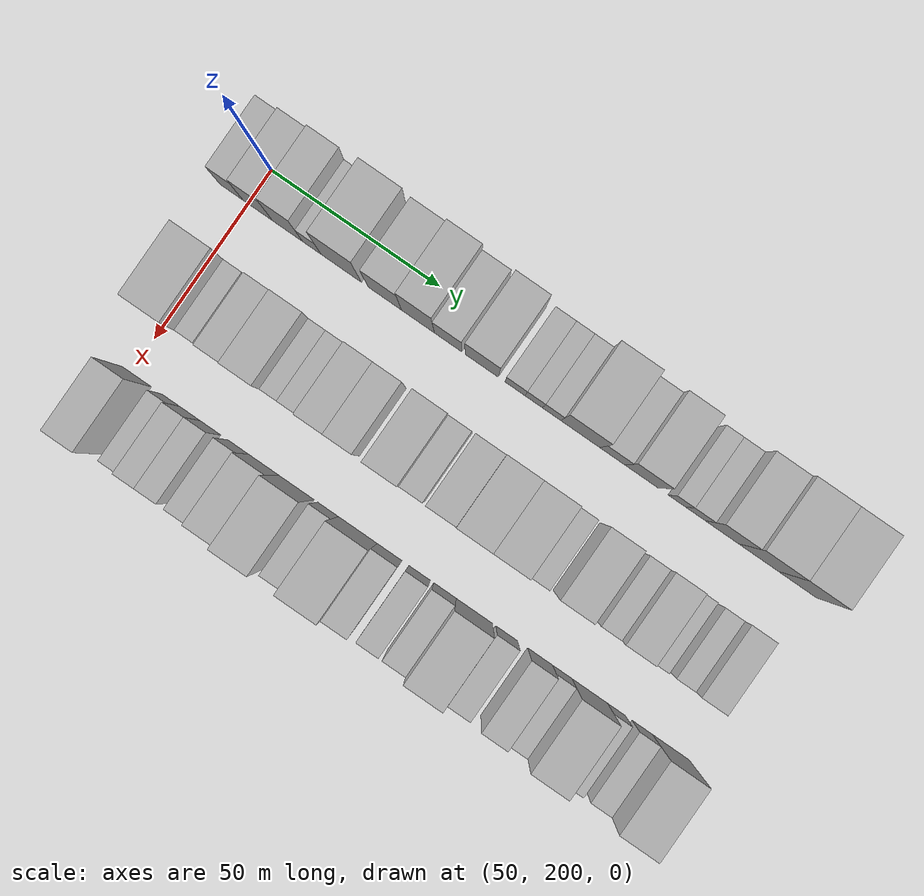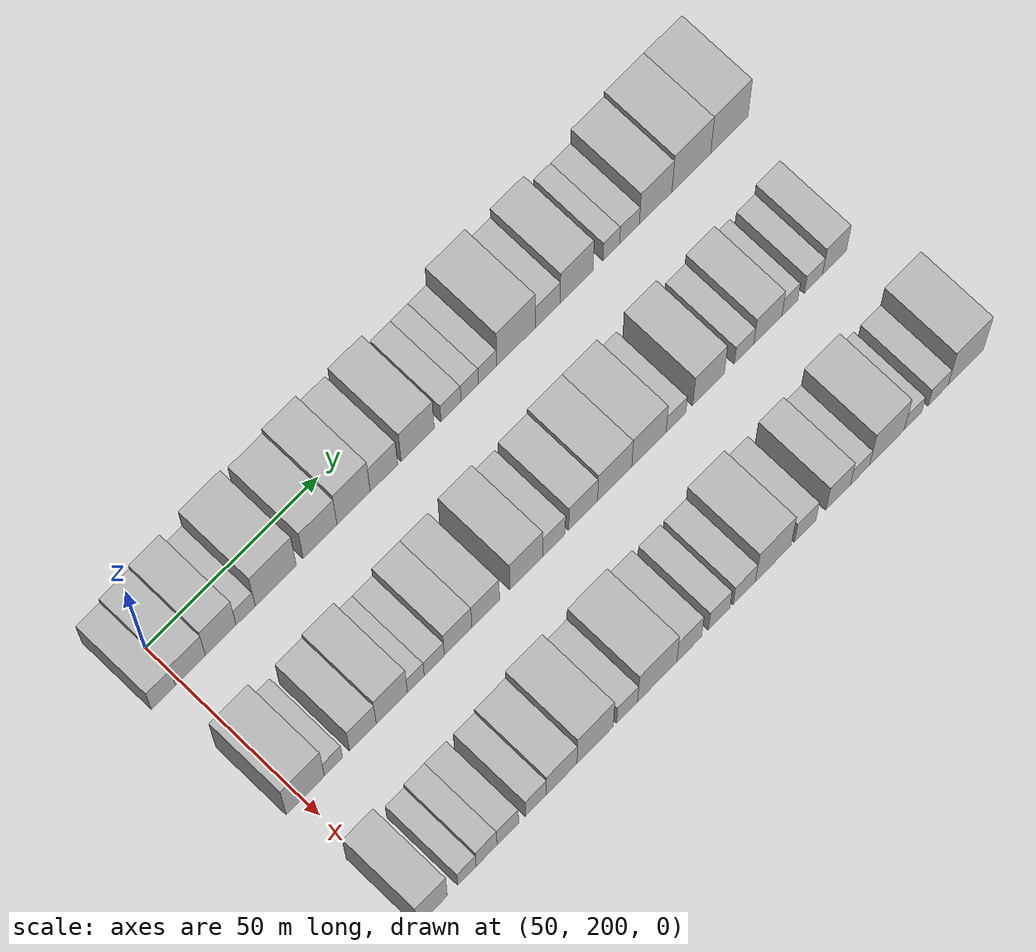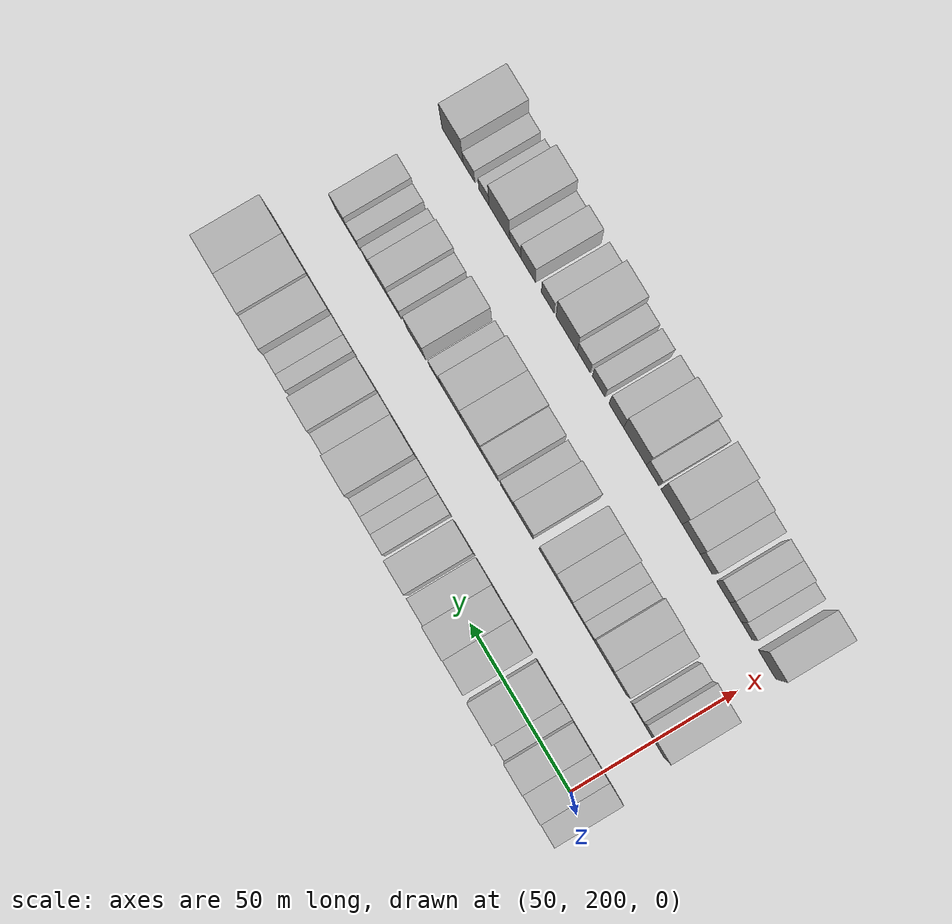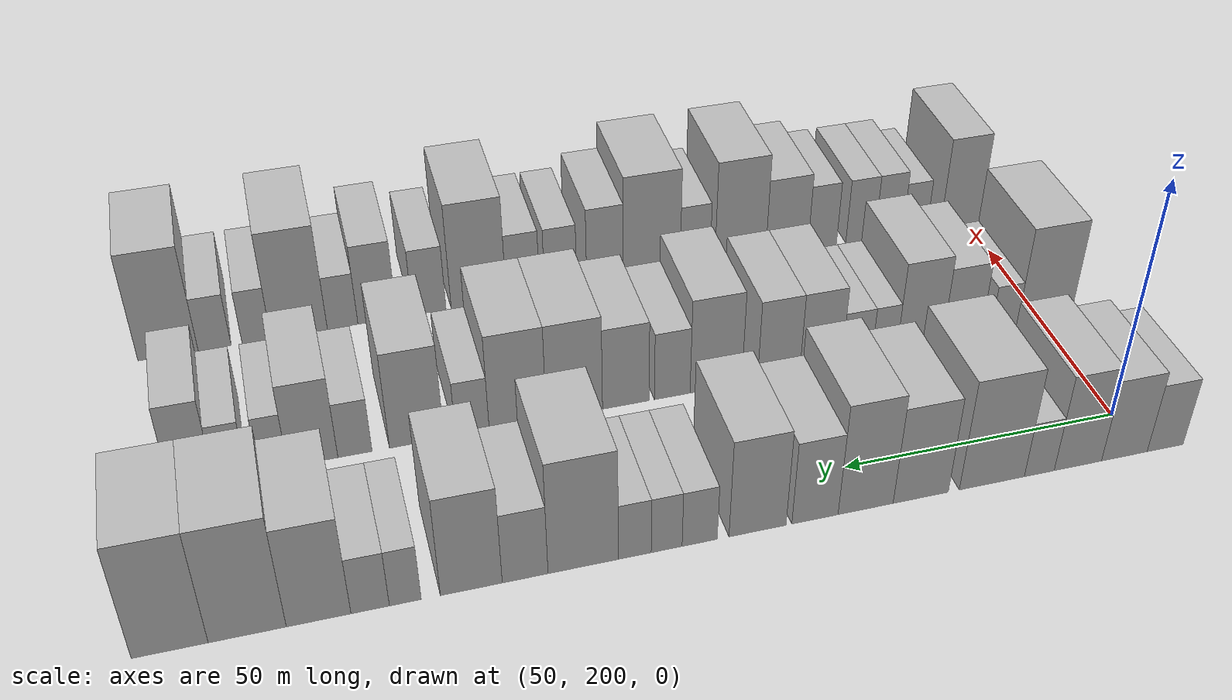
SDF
<sdf version="1.6">
 <world name="default">
  <model name="building_62">
   <static>1</static>
   <pose>50.0000 195.2270 0 0.000000 0.000000 0.000000</pose>
   <link name="link">
    <pose>0 0 7.50 0 0 0</pose>
    <collision name="collision"><geometry><box><size>20.0000 6.8969 15.0000</size></box></geometry></collision>
    <visual name="visual">
     <cast_shadows>0</cast_shadows>
     <geometry><box><size>20.0000 6.8969 15.0000</size></box></geometry>
     <material>
      <script>
       <uri>model://HANNAS_wall/materials/scripts</uri>
       <uri>model://HANNAS_wall/materials/textures</uri>
       <name>vrc/HANNAS_wall</name>
      </script>
     </material>
    </visual>
   </link>
  </model>
  <model name="building_63">
   <static>1</static>
   <pose>50.0000 203.0137 0 0.000000 0.000000 0.000000</pose>
   <link name="link">
    <pose>0 0 9.00 0 0 0</pose>
    <collision name="collision"><geometry><box><size>20.0000 8.6763 18.0000</size></box></geometry></collision>
    <visual name="visual">
     <cast_shadows>0</cast_shadows>
     <geometry><box><size>20.0000 8.6763 18.0000</size></box></geometry>
     <material>
      <script>
       <uri>model://HANNAS_wall/materials/scripts</uri>
       <uri>model://HANNAS_wall/materials/textures</uri>
       <name>vrc/HANNAS_wall</name>
      </script>
     </material>
    </visual>
   </link>
  </model>
  <model name="building_64">
   <static>1</static>
   <pose>50.0000 211.7805 0 0.000000 0.000000 0.000000</pose>
   <link name="link">
    <pose>0 0 10.50 0 0 0</pose>
    <collision name="collision"><geometry><box><size>20.0000 8.8573 21.0000</size></box></geometry></collision>
    <visual name="visual">
     <cast_shadows>0</cast_shadows>
     <geometry><box><size>20.0000 8.8573 21.0000</size></box></geometry>
     <material>
      <script>
       <uri>model://HANNAS_wall/materials/scripts</uri>
       <uri>model://HANNAS_wall/materials/textures</uri>
       <name>vrc/HANNAS_wall</name>
      </script>
     </material>
    </visual>
   </link>
  </model>
  <model name="building_65">
   <static>1</static>
   <pose>50.0000 218.9763 0 0.000000 0.000000 0.000000</pose>
   <link name="link">
    <pose>0 0 6.00 0 0 0</pose>
    <collision name="collision"><geometry><box><size>20.0000 5.5345 12.0000</size></box></geometry></collision>
    <visual name="visual">
     <cast_shadows>0</cast_shadows>
     <geometry><box><size>20.0000 5.5345 12.0000</size></box></geometry>
     <material>
      <script>
       <uri>model://HANNAS_wall/materials/scripts</uri>
       <uri>model://HANNAS_wall/materials/textures</uri>
       <name>vrc/HANNAS_wall</name>
      </script>
     </material>
    </visual>
   </link>
  </model>
  <model name="building_66">
   <static>1</static>
   <pose>50.0000 227.6906 0 0.000000 0.000000 0.000000</pose>
   <link name="link">
    <pose>0 0 12.00 0 0 0</pose>
    <collision name="collision"><geometry><box><size>20.0000 11.8941 24.0000</size></box></geometry></collision>
    <visual name="visual">
     <cast_shadows>0</cast_shadows>
     <geometry><box><size>20.0000 11.8941 24.0000</size></box></geometry>
     <material>
      <script>
       <uri>model://HANNAS_wall/materials/scripts</uri>
       <uri>model://HANNAS_wall/materials/textures</uri>
       <name>vrc/HANNAS_wall</name>
      </script>
     </material>
    </visual>
   </link>
  </model>
  <model name="building_67">
   <static>1</static>
   <pose>50.0000 240.5784 0 0.000000 0.000000 0.000000</pose>
   <link name="link">
    <pose>0 0 10.50 0 0 0</pose>
    <collision name="collision"><geometry><box><size>20.0000 9.8814 21.0000</size></box></geometry></collision>
    <visual name="visual">
     <cast_shadows>0</cast_shadows>
     <geometry><box><size>20.0000 9.8814 21.0000</size></box></geometry>
     <material>
      <script>
       <uri>model://HANNAS_wall/materials/scripts</uri>
       <uri>model://HANNAS_wall/materials/textures</uri>
       <name>vrc/HANNAS_wall</name>
      </script>
     </material>
    </visual>
   </link>
  </model>
  <model name="building_68">
   <static>1</static>
   <pose>50.0000 250.3855 0 0.000000 0.000000 0.000000</pose>
   <link name="link">
    <pose>0 0 12.00 0 0 0</pose>
    <collision name="collision"><geometry><box><size>20.0000 9.7328 24.0000</size></box></geometry></collision>
    <visual name="visual">
     <cast_shadows>0</cast_shadows>
     <geometry><box><size>20.0000 9.7328 24.0000</size></box></geometry>
     <material>
      <script>
       <uri>model://HANNAS_wall/materials/scripts</uri>
       <uri>model://HANNAS_wall/materials/textures</uri>
       <name>vrc/HANNAS_wall</name>
      </script>
     </material>
    </visual>
   </link>
  </model>
  <model name="building_69">
   <static>1</static>
   <pose>50.0000 259.2750 0 0.000000 0.000000 0.000000</pose>
   <link name="link">
    <pose>0 0 9.00 0 0 0</pose>
    <collision name="collision"><geometry><box><size>20.0000 8.0463 18.0000</size></box></geometry></collision>
    <visual name="visual">
     <cast_shadows>0</cast_shadows>
     <geometry><box><size>20.0000 8.0463 18.0000</size></box></geometry>
     <material>
      <script>
       <uri>model://HANNAS_wall/materials/scripts</uri>
       <uri>model://HANNAS_wall/materials/textures</uri>
       <name>vrc/HANNAS_wall</name>
      </script>
     </material>
    </visual>
   </link>
  </model>
  <model name="building_70">
   <static>1</static>
   <pose>50.0000 269.1923 0 0.000000 0.000000 0.000000</pose>
   <link name="link">
    <pose>0 0 10.50 0 0 0</pose>
    <collision name="collision"><geometry><box><size>20.0000 9.7882 21.0000</size></box></geometry></collision>
    <visual name="visual">
     <cast_shadows>0</cast_shadows>
     <geometry><box><size>20.0000 9.7882 21.0000</size></box></geometry>
     <material>
      <script>
       <uri>model://HANNAS_wall/materials/scripts</uri>
       <uri>model://HANNAS_wall/materials/textures</uri>
       <name>vrc/HANNAS_wall</name>
      </script>
     </material>
    </visual>
   </link>
  </model>
  <model name="building_71">
   <static>1</static>
   <pose>50.0000 279.0514 0 0.000000 0.000000 0.000000</pose>
   <link name="link">
    <pose>0 0 6.00 0 0 0</pose>
    <collision name="collision"><geometry><box><size>20.0000 5.9301 12.0000</size></box></geometry></collision>
    <visual name="visual">
     <cast_shadows>0</cast_shadows>
     <geometry><box><size>20.0000 5.9301 12.0000</size></box></geometry>
     <material>
      <script>
       <uri>model://HANNAS_wall/materials/scripts</uri>
       <uri>model://HANNAS_wall/materials/textures</uri>
       <name>vrc/HANNAS_wall</name>
      </script>
     </material>
    </visual>
   </link>
  </model>
  <model name="building_72">
   <static>1</static>
   <pose>50.0000 284.6004 0 0.000000 0.000000 0.000000</pose>
   <link name="link">
    <pose>0 0 6.00 0 0 0</pose>
    <collision name="collision"><geometry><box><size>20.0000 5.1681 12.0000</size></box></geometry></collision>
    <visual name="visual">
     <cast_shadows>0</cast_shadows>
     <geometry><box><size>20.0000 5.1681 12.0000</size></box></geometry>
     <material>
      <script>
       <uri>model://HANNAS_wall/materials/scripts</uri>
       <uri>model://HANNAS_wall/materials/textures</uri>
       <name>vrc/HANNAS_wall</name>
      </script>
     </material>
    </visual>
   </link>
  </model>
  <model name="building_73">
   <static>1</static>
   <pose>50.0000 289.9048 0 0.000000 0.000000 0.000000</pose>
   <link name="link">
    <pose>0 0 6.00 0 0 0</pose>
    <collision name="collision"><geometry><box><size>20.0000 5.4407 12.0000</size></box></geometry></collision>
    <visual name="visual">
     <cast_shadows>0</cast_shadows>
     <geometry><box><size>20.0000 5.4407 12.0000</size></box></geometry>
     <material>
      <script>
       <uri>model://HANNAS_wall/materials/scripts</uri>
       <uri>model://HANNAS_wall/materials/textures</uri>
       <name>vrc/HANNAS_wall</name>
      </script>
     </material>
    </visual>
   </link>
  </model>
  <model name="building_74">
   <static>1</static>
   <pose>50.0000 298.3838 0 0.000000 0.000000 0.000000</pose>
   <link name="link">
    <pose>0 0 12.00 0 0 0</pose>
    <collision name="collision"><geometry><box><size>20.0000 11.5172 24.0000</size></box></geometry></collision>
    <visual name="visual">
     <cast_shadows>0</cast_shadows>
     <geometry><box><size>20.0000 11.5172 24.0000</size></box></geometry>
     <material>
      <script>
       <uri>model://HANNAS_wall/materials/scripts</uri>
       <uri>model://HANNAS_wall/materials/textures</uri>
       <name>vrc/HANNAS_wall</name>
      </script>
     </material>
    </visual>
   </link>
  </model>
  <model name="building_75">
   <static>1</static>
   <pose>50.0000 307.8314 0 0.000000 0.000000 0.000000</pose>
   <link name="link">
    <pose>0 0 7.50 0 0 0</pose>
    <collision name="collision"><geometry><box><size>20.0000 7.3780 15.0000</size></box></geometry></collision>
    <visual name="visual">
     <cast_shadows>0</cast_shadows>
     <geometry><box><size>20.0000 7.3780 15.0000</size></box></geometry>
     <material>
      <script>
       <uri>model://HANNAS_wall/materials/scripts</uri>
       <uri>model://HANNAS_wall/materials/textures</uri>
       <name>vrc/HANNAS_wall</name>
      </script>
     </material>
    </visual>
   </link>
  </model>
  <model name="building_76">
   <static>1</static>
   <pose>50.0000 316.4423 0 0.000000 0.000000 0.000000</pose>
   <link name="link">
    <pose>0 0 10.50 0 0 0</pose>
    <collision name="collision"><geometry><box><size>20.0000 9.8438 21.0000</size></box></geometry></collision>
    <visual name="visual">
     <cast_shadows>0</cast_shadows>
     <geometry><box><size>20.0000 9.8438 21.0000</size></box></geometry>
     <material>
      <script>
       <uri>model://HANNAS_wall/materials/scripts</uri>
       <uri>model://HANNAS_wall/materials/textures</uri>
       <name>vrc/HANNAS_wall</name>
      </script>
     </material>
    </visual>
   </link>
  </model>
  <model name="building_77">
   <static>1</static>
   <pose>50.0000 326.8547 0 0.000000 0.000000 0.000000</pose>
   <link name="link">
    <pose>0 0 6.00 0 0 0</pose>
    <collision name="collision"><geometry><box><size>20.0000 4.9808 12.0000</size></box></geometry></collision>
    <visual name="visual">
     <cast_shadows>0</cast_shadows>
     <geometry><box><size>20.0000 4.9808 12.0000</size></box></geometry>
     <material>
      <script>
       <uri>model://HANNAS_wall/materials/scripts</uri>
       <uri>model://HANNAS_wall/materials/textures</uri>
       <name>vrc/HANNAS_wall</name>
      </script>
     </material>
    </visual>
   </link>
  </model>
  <model name="building_78">
   <static>1</static>
   <pose>50.0000 332.3177 0 0.000000 0.000000 0.000000</pose>
   <link name="link">
    <pose>0 0 6.00 0 0 0</pose>
    <collision name="collision"><geometry><box><size>20.0000 5.9453 12.0000</size></box></geometry></collision>
    <visual name="visual">
     <cast_shadows>0</cast_shadows>
     <geometry><box><size>20.0000 5.9453 12.0000</size></box></geometry>
     <material>
      <script>
       <uri>model://HANNAS_wall/materials/scripts</uri>
       <uri>model://HANNAS_wall/materials/textures</uri>
       <name>vrc/HANNAS_wall</name>
      </script>
     </material>
    </visual>
   </link>
  </model>
  <model name="building_79">
   <static>1</static>
   <pose>50.0000 340.2331 0 0.000000 0.000000 0.000000</pose>
   <link name="link">
    <pose>0 0 10.50 0 0 0</pose>
    <collision name="collision"><geometry><box><size>20.0000 9.8855 21.0000</size></box></geometry></collision>
    <visual name="visual">
     <cast_shadows>0</cast_shadows>
     <geometry><box><size>20.0000 9.8855 21.0000</size></box></geometry>
     <material>
      <script>
       <uri>model://HANNAS_wall/materials/scripts</uri>
       <uri>model://HANNAS_wall/materials/textures</uri>
       <name>vrc/HANNAS_wall</name>
      </script>
     </material>
    </visual>
   </link>
  </model>
  <model name="building_80">
   <static>1</static>
   <pose>50.0000 351.0403 0 0.000000 0.000000 0.000000</pose>
   <link name="link">
    <pose>0 0 12.00 0 0 0</pose>
    <collision name="collision"><geometry><box><size>20.0000 11.7289 24.0000</size></box></geometry></collision>
    <visual name="visual">
     <cast_shadows>0</cast_shadows>
     <geometry><box><size>20.0000 11.7289 24.0000</size></box></geometry>
     <material>
      <script>
       <uri>model://HANNAS_wall/materials/scripts</uri>
       <uri>model://HANNAS_wall/materials/textures</uri>
       <name>vrc/HANNAS_wall</name>
      </script>
     </material>
    </visual>
   </link>
  </model>
  <model name="building_81">
   <static>1</static>
   <pose>50.0000 362.5758 0 0.000000 0.000000 0.000000</pose>
   <link name="link">
    <pose>0 0 12.00 0 0 0</pose>
    <collision name="collision"><geometry><box><size>20.0000 11.3421 24.0000</size></box></geometry></collision>
    <visual name="visual">
     <cast_shadows>0</cast_shadows>
     <geometry><box><size>20.0000 11.3421 24.0000</size></box></geometry>
     <material>
      <script>
       <uri>model://HANNAS_wall/materials/scripts</uri>
       <uri>model://HANNAS_wall/materials/textures</uri>
       <name>vrc/HANNAS_wall</name>
      </script>
     </material>
    </visual>
   </link>
  </model>
  <model name="building_142">
   <static>1</static>
   <pose>85.0000 200.9007 0 0.000000 0.000000 0.000000</pose>
   <link name="link">
    <pose>0 0 12.00 0 0 0</pose>
    <collision name="collision"><geometry><box><size>20.0000 11.0409 24.0000</size></box></geometry></collision>
    <visual name="visual">
     <cast_shadows>0</cast_shadows>
     <geometry><box><size>20.0000 11.0409 24.0000</size></box></geometry>
     <material>
      <script>
       <uri>model://HANNAS_wall/materials/scripts</uri>
       <uri>model://HANNAS_wall/materials/textures</uri>
       <name>vrc/HANNAS_wall</name>
      </script>
     </material>
    </visual>
   </link>
  </model>
  <model name="building_143">
   <static>1</static>
   <pose>85.0000 209.0404 0 0.000000 0.000000 0.000000</pose>
   <link name="link">
    <pose>0 0 6.00 0 0 0</pose>
    <collision name="collision"><geometry><box><size>20.0000 5.2383 12.0000</size></box></geometry></collision>
    <visual name="visual">
     <cast_shadows>0</cast_shadows>
     <geometry><box><size>20.0000 5.2383 12.0000</size></box></geometry>
     <material>
      <script>
       <uri>model://HANNAS_wall/materials/scripts</uri>
       <uri>model://HANNAS_wall/materials/textures</uri>
       <name>vrc/HANNAS_wall</name>
      </script>
     </material>
    </visual>
   </link>
  </model>
  <model name="building_144">
   <static>1</static>
   <pose>85.0000 217.5261 0 0.000000 0.000000 0.000000</pose>
   <link name="link">
    <pose>0 0 9.00 0 0 0</pose>
    <collision name="collision"><geometry><box><size>20.0000 7.7331 18.0000</size></box></geometry></collision>
    <visual name="visual">
     <cast_shadows>0</cast_shadows>
     <geometry><box><size>20.0000 7.7331 18.0000</size></box></geometry>
     <material>
      <script>
       <uri>model://HANNAS_wall/materials/scripts</uri>
       <uri>model://HANNAS_wall/materials/textures</uri>
       <name>vrc/HANNAS_wall</name>
      </script>
     </material>
    </visual>
   </link>
  </model>
  <model name="building_145">
   <static>1</static>
   <pose>85.0000 225.9189 0 0.000000 0.000000 0.000000</pose>
   <link name="link">
    <pose>0 0 10.50 0 0 0</pose>
    <collision name="collision"><geometry><box><size>20.0000 9.0525 21.0000</size></box></geometry></collision>
    <visual name="visual">
     <cast_shadows>0</cast_shadows>
     <geometry><box><size>20.0000 9.0525 21.0000</size></box></geometry>
     <material>
      <script>
       <uri>model://HANNAS_wall/materials/scripts</uri>
       <uri>model://HANNAS_wall/materials/textures</uri>
       <name>vrc/HANNAS_wall</name>
      </script>
     </material>
    </visual>
   </link>
  </model>
  <model name="building_146">
   <static>1</static>
   <pose>85.0000 232.8794 0 0.000000 0.000000 0.000000</pose>
   <link name="link">
    <pose>0 0 6.00 0 0 0</pose>
    <collision name="collision"><geometry><box><size>20.0000 4.8685 12.0000</size></box></geometry></collision>
    <visual name="visual">
     <cast_shadows>0</cast_shadows>
     <geometry><box><size>20.0000 4.8685 12.0000</size></box></geometry>
     <material>
      <script>
       <uri>model://HANNAS_wall/materials/scripts</uri>
       <uri>model://HANNAS_wall/materials/textures</uri>
       <name>vrc/HANNAS_wall</name>
      </script>
     </material>
    </visual>
   </link>
  </model>
  <model name="building_147">
   <static>1</static>
   <pose>85.0000 238.2416 0 0.000000 0.000000 0.000000</pose>
   <link name="link">
    <pose>0 0 6.00 0 0 0</pose>
    <collision name="collision"><geometry><box><size>20.0000 5.8560 12.0000</size></box></geometry></collision>
    <visual name="visual">
     <cast_shadows>0</cast_shadows>
     <geometry><box><size>20.0000 5.8560 12.0000</size></box></geometry>
     <material>
      <script>
       <uri>model://HANNAS_wall/materials/scripts</uri>
       <uri>model://HANNAS_wall/materials/textures</uri>
       <name>vrc/HANNAS_wall</name>
      </script>
     </material>
    </visual>
   </link>
  </model>
  <model name="building_148">
   <static>1</static>
   <pose>85.0000 245.2063 0 0.000000 0.000000 0.000000</pose>
   <link name="link">
    <pose>0 0 9.00 0 0 0</pose>
    <collision name="collision"><geometry><box><size>20.0000 8.0736 18.0000</size></box></geometry></collision>
    <visual name="visual">
     <cast_shadows>0</cast_shadows>
     <geometry><box><size>20.0000 8.0736 18.0000</size></box></geometry>
     <material>
      <script>
       <uri>model://HANNAS_wall/materials/scripts</uri>
       <uri>model://HANNAS_wall/materials/textures</uri>
       <name>vrc/HANNAS_wall</name>
      </script>
     </material>
    </visual>
   </link>
  </model>
  <model name="building_149">
   <static>1</static>
   <pose>85.0000 253.2867 0 0.000000 0.000000 0.000000</pose>
   <link name="link">
    <pose>0 0 9.00 0 0 0</pose>
    <collision name="collision"><geometry><box><size>20.0000 8.0872 18.0000</size></box></geometry></collision>
    <visual name="visual">
     <cast_shadows>0</cast_shadows>
     <geometry><box><size>20.0000 8.0872 18.0000</size></box></geometry>
     <material>
      <script>
       <uri>model://HANNAS_wall/materials/scripts</uri>
       <uri>model://HANNAS_wall/materials/textures</uri>
       <name>vrc/HANNAS_wall</name>
      </script>
     </material>
    </visual>
   </link>
  </model>
  <model name="building_150">
   <static>1</static>
   <pose>85.0000 265.1946 0 0.000000 0.000000 0.000000</pose>
   <link name="link">
    <pose>0 0 10.50 0 0 0</pose>
    <collision name="collision"><geometry><box><size>20.0000 9.7285 21.0000</size></box></geometry></collision>
    <visual name="visual">
     <cast_shadows>0</cast_shadows>
     <geometry><box><size>20.0000 9.7285 21.0000</size></box></geometry>
     <material>
      <script>
       <uri>model://HANNAS_wall/materials/scripts</uri>
       <uri>model://HANNAS_wall/materials/textures</uri>
       <name>vrc/HANNAS_wall</name>
      </script>
     </material>
    </visual>
   </link>
  </model>
  <model name="building_151">
   <static>1</static>
   <pose>85.0000 273.3765 0 0.000000 0.000000 0.000000</pose>
   <link name="link">
    <pose>0 0 7.50 0 0 0</pose>
    <collision name="collision"><geometry><box><size>20.0000 6.6353 15.0000</size></box></geometry></collision>
    <visual name="visual">
     <cast_shadows>0</cast_shadows>
     <geometry><box><size>20.0000 6.6353 15.0000</size></box></geometry>
     <material>
      <script>
       <uri>model://HANNAS_wall/materials/scripts</uri>
       <uri>model://HANNAS_wall/materials/textures</uri>
       <name>vrc/HANNAS_wall</name>
      </script>
     </material>
    </visual>
   </link>
  </model>
  <model name="building_152">
   <static>1</static>
   <pose>85.0000 281.9622 0 0.000000 0.000000 0.000000</pose>
   <link name="link">
    <pose>0 0 9.00 0 0 0</pose>
    <collision name="collision"><geometry><box><size>20.0000 8.5362 18.0000</size></box></geometry></collision>
    <visual name="visual">
     <cast_shadows>0</cast_shadows>
     <geometry><box><size>20.0000 8.5362 18.0000</size></box></geometry>
     <material>
      <script>
       <uri>model://HANNAS_wall/materials/scripts</uri>
       <uri>model://HANNAS_wall/materials/textures</uri>
       <name>vrc/HANNAS_wall</name>
      </script>
     </material>
    </visual>
   </link>
  </model>
  <model name="building_153">
   <static>1</static>
   <pose>85.0000 291.3192 0 0.000000 0.000000 0.000000</pose>
   <link name="link">
    <pose>0 0 10.50 0 0 0</pose>
    <collision name="collision"><geometry><box><size>20.0000 10.1778 21.0000</size></box></geometry></collision>
    <visual name="visual">
     <cast_shadows>0</cast_shadows>
     <geometry><box><size>20.0000 10.1778 21.0000</size></box></geometry>
     <material>
      <script>
       <uri>model://HANNAS_wall/materials/scripts</uri>
       <uri>model://HANNAS_wall/materials/textures</uri>
       <name>vrc/HANNAS_wall</name>
      </script>
     </material>
    </visual>
   </link>
  </model>
  <model name="building_154">
   <static>1</static>
   <pose>85.0000 301.5175 0 0.000000 0.000000 0.000000</pose>
   <link name="link">
    <pose>0 0 10.50 0 0 0</pose>
    <collision name="collision"><geometry><box><size>20.0000 10.2187 21.0000</size></box></geometry></collision>
    <visual name="visual">
     <cast_shadows>0</cast_shadows>
     <geometry><box><size>20.0000 10.2187 21.0000</size></box></geometry>
     <material>
      <script>
       <uri>model://HANNAS_wall/materials/scripts</uri>
       <uri>model://HANNAS_wall/materials/textures</uri>
       <name>vrc/HANNAS_wall</name>
      </script>
     </material>
    </visual>
   </link>
  </model>
  <model name="building_155">
   <static>1</static>
   <pose>85.0000 309.6089 0 0.000000 0.000000 0.000000</pose>
   <link name="link">
    <pose>0 0 6.00 0 0 0</pose>
    <collision name="collision"><geometry><box><size>20.0000 5.9642 12.0000</size></box></geometry></collision>
    <visual name="visual">
     <cast_shadows>0</cast_shadows>
     <geometry><box><size>20.0000 5.9642 12.0000</size></box></geometry>
     <material>
      <script>
       <uri>model://HANNAS_wall/materials/scripts</uri>
       <uri>model://HANNAS_wall/materials/textures</uri>
       <name>vrc/HANNAS_wall</name>
      </script>
     </material>
    </visual>
   </link>
  </model>
  <model name="building_156">
   <static>1</static>
   <pose>85.0000 319.3397 0 0.000000 0.000000 0.000000</pose>
   <link name="link">
    <pose>0 0 10.50 0 0 0</pose>
    <collision name="collision"><geometry><box><size>20.0000 9.4974 21.0000</size></box></geometry></collision>
    <visual name="visual">
     <cast_shadows>0</cast_shadows>
     <geometry><box><size>20.0000 9.4974 21.0000</size></box></geometry>
     <material>
      <script>
       <uri>model://HANNAS_wall/materials/scripts</uri>
       <uri>model://HANNAS_wall/materials/textures</uri>
       <name>vrc/HANNAS_wall</name>
      </script>
     </material>
    </visual>
   </link>
  </model>
  <model name="building_157">
   <static>1</static>
   <pose>85.0000 330.0149 0 0.000000 0.000000 0.000000</pose>
   <link name="link">
    <pose>0 0 6.00 0 0 0</pose>
    <collision name="collision"><geometry><box><size>20.0000 5.8530 12.0000</size></box></geometry></collision>
    <visual name="visual">
     <cast_shadows>0</cast_shadows>
     <geometry><box><size>20.0000 5.8530 12.0000</size></box></geometry>
     <material>
      <script>
       <uri>model://HANNAS_wall/materials/scripts</uri>
       <uri>model://HANNAS_wall/materials/textures</uri>
       <name>vrc/HANNAS_wall</name>
      </script>
     </material>
    </visual>
   </link>
  </model>
  <model name="building_158">
   <static>1</static>
   <pose>85.0000 337.2015 0 0.000000 0.000000 0.000000</pose>
   <link name="link">
    <pose>0 0 9.00 0 0 0</pose>
    <collision name="collision"><geometry><box><size>20.0000 8.5202 18.0000</size></box></geometry></collision>
    <visual name="visual">
     <cast_shadows>0</cast_shadows>
     <geometry><box><size>20.0000 8.5202 18.0000</size></box></geometry>
     <material>
      <script>
       <uri>model://HANNAS_wall/materials/scripts</uri>
       <uri>model://HANNAS_wall/materials/textures</uri>
       <name>vrc/HANNAS_wall</name>
      </script>
     </material>
    </visual>
   </link>
  </model>
  <model name="building_159">
   <static>1</static>
   <pose>85.0000 343.8737 0 0.000000 0.000000 0.000000</pose>
   <link name="link">
    <pose>0 0 6.00 0 0 0</pose>
    <collision name="collision"><geometry><box><size>20.0000 4.8241 12.0000</size></box></geometry></collision>
    <visual name="visual">
     <cast_shadows>0</cast_shadows>
     <geometry><box><size>20.0000 4.8241 12.0000</size></box></geometry>
     <material>
      <script>
       <uri>model://HANNAS_wall/materials/scripts</uri>
       <uri>model://HANNAS_wall/materials/textures</uri>
       <name>vrc/HANNAS_wall</name>
      </script>
     </material>
    </visual>
   </link>
  </model>
  <model name="building_160">
   <static>1</static>
   <pose>85.0000 351.0418 0 0.000000 0.000000 0.000000</pose>
   <link name="link">
    <pose>0 0 6.00 0 0 0</pose>
    <collision name="collision"><geometry><box><size>20.0000 5.5122 12.0000</size></box></geometry></collision>
    <visual name="visual">
     <cast_shadows>0</cast_shadows>
     <geometry><box><size>20.0000 5.5122 12.0000</size></box></geometry>
     <material>
      <script>
       <uri>model://HANNAS_wall/materials/scripts</uri>
       <uri>model://HANNAS_wall/materials/textures</uri>
       <name>vrc/HANNAS_wall</name>
      </script>
     </material>
    </visual>
   </link>
  </model>
  <model name="building_161">
   <static>1</static>
   <pose>85.0000 357.4154 0 0.000000 0.000000 0.000000</pose>
   <link name="link">
    <pose>0 0 9.00 0 0 0</pose>
    <collision name="collision"><geometry><box><size>20.0000 7.2349 18.0000</size></box></geometry></collision>
    <visual name="visual">
     <cast_shadows>0</cast_shadows>
     <geometry><box><size>20.0000 7.2349 18.0000</size></box></geometry>
     <material>
      <script>
       <uri>model://HANNAS_wall/materials/scripts</uri>
       <uri>model://HANNAS_wall/materials/textures</uri>
       <name>vrc/HANNAS_wall</name>
      </script>
     </material>
    </visual>
   </link>
  </model>
  <model name="building_221">
   <static>1</static>
   <pose>120.0000 201.7988 0 0.000000 0.000000 0.000000</pose>
   <link name="link">
    <pose>0 0 10.50 0 0 0</pose>
    <collision name="collision"><geometry><box><size>20.0000 8.7034 21.0000</size></box></geometry></collision>
    <visual name="visual">
     <cast_shadows>0</cast_shadows>
     <geometry><box><size>20.0000 8.7034 21.0000</size></box></geometry>
     <material>
      <script>
       <uri>model://HANNAS_wall/materials/scripts</uri>
       <uri>model://HANNAS_wall/materials/textures</uri>
       <name>vrc/HANNAS_wall</name>
      </script>
     </material>
    </visual>
   </link>
  </model>
  <model name="building_222">
   <static>1</static>
   <pose>120.0000 211.8116 0 0.000000 0.000000 0.000000</pose>
   <link name="link">
    <pose>0 0 6.00 0 0 0</pose>
    <collision name="collision"><geometry><box><size>20.0000 5.3221 12.0000</size></box></geometry></collision>
    <visual name="visual">
     <cast_shadows>0</cast_shadows>
     <geometry><box><size>20.0000 5.3221 12.0000</size></box></geometry>
     <material>
      <script>
       <uri>model://HANNAS_wall/materials/scripts</uri>
       <uri>model://HANNAS_wall/materials/textures</uri>
       <name>vrc/HANNAS_wall</name>
      </script>
     </material>
    </visual>
   </link>
  </model>
  <model name="building_223">
   <static>1</static>
   <pose>120.0000 217.4837 0 0.000000 0.000000 0.000000</pose>
   <link name="link">
    <pose>0 0 7.50 0 0 0</pose>
    <collision name="collision"><geometry><box><size>20.0000 6.0221 15.0000</size></box></geometry></collision>
    <visual name="visual">
     <cast_shadows>0</cast_shadows>
     <geometry><box><size>20.0000 6.0221 15.0000</size></box></geometry>
     <material>
      <script>
       <uri>model://HANNAS_wall/materials/scripts</uri>
       <uri>model://HANNAS_wall/materials/textures</uri>
       <name>vrc/HANNAS_wall</name>
      </script>
     </material>
    </visual>
   </link>
  </model>
  <model name="building_224">
   <static>1</static>
   <pose>120.0000 223.6107 0 0.000000 0.000000 0.000000</pose>
   <link name="link">
    <pose>0 0 7.50 0 0 0</pose>
    <collision name="collision"><geometry><box><size>20.0000 6.2319 15.0000</size></box></geometry></collision>
    <visual name="visual">
     <cast_shadows>0</cast_shadows>
     <geometry><box><size>20.0000 6.2319 15.0000</size></box></geometry>
     <material>
      <script>
       <uri>model://HANNAS_wall/materials/scripts</uri>
       <uri>model://HANNAS_wall/materials/textures</uri>
       <name>vrc/HANNAS_wall</name>
      </script>
     </material>
    </visual>
   </link>
  </model>
  <model name="building_225">
   <static>1</static>
   <pose>120.0000 231.7772 0 0.000000 0.000000 0.000000</pose>
   <link name="link">
    <pose>0 0 7.50 0 0 0</pose>
    <collision name="collision"><geometry><box><size>20.0000 6.1011 15.0000</size></box></geometry></collision>
    <visual name="visual">
     <cast_shadows>0</cast_shadows>
     <geometry><box><size>20.0000 6.1011 15.0000</size></box></geometry>
     <material>
      <script>
       <uri>model://HANNAS_wall/materials/scripts</uri>
       <uri>model://HANNAS_wall/materials/textures</uri>
       <name>vrc/HANNAS_wall</name>
      </script>
     </material>
    </visual>
   </link>
  </model>
  <model name="building_226">
   <static>1</static>
   <pose>120.0000 239.2904 0 0.000000 0.000000 0.000000</pose>
   <link name="link">
    <pose>0 0 9.00 0 0 0</pose>
    <collision name="collision"><geometry><box><size>20.0000 8.9252 18.0000</size></box></geometry></collision>
    <visual name="visual">
     <cast_shadows>0</cast_shadows>
     <geometry><box><size>20.0000 8.9252 18.0000</size></box></geometry>
     <material>
      <script>
       <uri>model://HANNAS_wall/materials/scripts</uri>
       <uri>model://HANNAS_wall/materials/textures</uri>
       <name>vrc/HANNAS_wall</name>
      </script>
     </material>
    </visual>
   </link>
  </model>
  <model name="building_227">
   <static>1</static>
   <pose>120.0000 249.0477 0 0.000000 0.000000 0.000000</pose>
   <link name="link">
    <pose>0 0 12.00 0 0 0</pose>
    <collision name="collision"><geometry><box><size>20.0000 10.5895 24.0000</size></box></geometry></collision>
    <visual name="visual">
     <cast_shadows>0</cast_shadows>
     <geometry><box><size>20.0000 10.5895 24.0000</size></box></geometry>
     <material>
      <script>
       <uri>model://HANNAS_wall/materials/scripts</uri>
       <uri>model://HANNAS_wall/materials/textures</uri>
       <name>vrc/HANNAS_wall</name>
      </script>
     </material>
    </visual>
   </link>
  </model>
  <model name="building_228">
   <static>1</static>
   <pose>120.0000 258.4227 0 0.000000 0.000000 0.000000</pose>
   <link name="link">
    <pose>0 0 7.50 0 0 0</pose>
    <collision name="collision"><geometry><box><size>20.0000 6.1605 15.0000</size></box></geometry></collision>
    <visual name="visual">
     <cast_shadows>0</cast_shadows>
     <geometry><box><size>20.0000 6.1605 15.0000</size></box></geometry>
     <material>
      <script>
       <uri>model://HANNAS_wall/materials/scripts</uri>
       <uri>model://HANNAS_wall/materials/textures</uri>
       <name>vrc/HANNAS_wall</name>
      </script>
     </material>
    </visual>
   </link>
  </model>
  <model name="building_229">
   <static>1</static>
   <pose>120.0000 267.2680 0 0.000000 0.000000 0.000000</pose>
   <link name="link">
    <pose>0 0 12.00 0 0 0</pose>
    <collision name="collision"><geometry><box><size>20.0000 11.5302 24.0000</size></box></geometry></collision>
    <visual name="visual">
     <cast_shadows>0</cast_shadows>
     <geometry><box><size>20.0000 11.5302 24.0000</size></box></geometry>
     <material>
      <script>
       <uri>model://HANNAS_wall/materials/scripts</uri>
       <uri>model://HANNAS_wall/materials/textures</uri>
       <name>vrc/HANNAS_wall</name>
      </script>
     </material>
    </visual>
   </link>
  </model>
  <model name="building_230">
   <static>1</static>
   <pose>120.0000 276.7028 0 0.000000 0.000000 0.000000</pose>
   <link name="link">
    <pose>0 0 9.00 0 0 0</pose>
    <collision name="collision"><geometry><box><size>20.0000 7.3393 18.0000</size></box></geometry></collision>
    <visual name="visual">
     <cast_shadows>0</cast_shadows>
     <geometry><box><size>20.0000 7.3393 18.0000</size></box></geometry>
     <material>
      <script>
       <uri>model://HANNAS_wall/materials/scripts</uri>
       <uri>model://HANNAS_wall/materials/textures</uri>
       <name>vrc/HANNAS_wall</name>
      </script>
     </material>
    </visual>
   </link>
  </model>
  <model name="building_231">
   <static>1</static>
   <pose>120.0000 285.5571 0 0.000000 0.000000 0.000000</pose>
   <link name="link">
    <pose>0 0 7.50 0 0 0</pose>
    <collision name="collision"><geometry><box><size>20.0000 6.3693 15.0000</size></box></geometry></collision>
    <visual name="visual">
     <cast_shadows>0</cast_shadows>
     <geometry><box><size>20.0000 6.3693 15.0000</size></box></geometry>
     <material>
      <script>
       <uri>model://HANNAS_wall/materials/scripts</uri>
       <uri>model://HANNAS_wall/materials/textures</uri>
       <name>vrc/HANNAS_wall</name>
      </script>
     </material>
    </visual>
   </link>
  </model>
  <model name="building_232">
   <static>1</static>
   <pose>120.0000 293.0316 0 0.000000 0.000000 0.000000</pose>
   <link name="link">
    <pose>0 0 7.50 0 0 0</pose>
    <collision name="collision"><geometry><box><size>20.0000 6.5798 15.0000</size></box></geometry></collision>
    <visual name="visual">
     <cast_shadows>0</cast_shadows>
     <geometry><box><size>20.0000 6.5798 15.0000</size></box></geometry>
     <material>
      <script>
       <uri>model://HANNAS_wall/materials/scripts</uri>
       <uri>model://HANNAS_wall/materials/textures</uri>
       <name>vrc/HANNAS_wall</name>
      </script>
     </material>
    </visual>
   </link>
  </model>
  <model name="building_233">
   <static>1</static>
   <pose>120.0000 301.6733 0 0.000000 0.000000 0.000000</pose>
   <link name="link">
    <pose>0 0 12.00 0 0 0</pose>
    <collision name="collision"><geometry><box><size>20.0000 10.7035 24.0000</size></box></geometry></collision>
    <visual name="visual">
     <cast_shadows>0</cast_shadows>
     <geometry><box><size>20.0000 10.7035 24.0000</size></box></geometry>
     <material>
      <script>
       <uri>model://HANNAS_wall/materials/scripts</uri>
       <uri>model://HANNAS_wall/materials/textures</uri>
       <name>vrc/HANNAS_wall</name>
      </script>
     </material>
    </visual>
   </link>
  </model>
  <model name="building_234">
   <static>1</static>
   <pose>120.0000 311.2394 0 0.000000 0.000000 0.000000</pose>
   <link name="link">
    <pose>0 0 7.50 0 0 0</pose>
    <collision name="collision"><geometry><box><size>20.0000 6.4289 15.0000</size></box></geometry></collision>
    <visual name="visual">
     <cast_shadows>0</cast_shadows>
     <geometry><box><size>20.0000 6.4289 15.0000</size></box></geometry>
     <material>
      <script>
       <uri>model://HANNAS_wall/materials/scripts</uri>
       <uri>model://HANNAS_wall/materials/textures</uri>
       <name>vrc/HANNAS_wall</name>
      </script>
     </material>
    </visual>
   </link>
  </model>
  <model name="building_235">
   <static>1</static>
   <pose>120.0000 321.1407 0 0.000000 0.000000 0.000000</pose>
   <link name="link">
    <pose>0 0 9.00 0 0 0</pose>
    <collision name="collision"><geometry><box><size>20.0000 7.3735 18.0000</size></box></geometry></collision>
    <visual name="visual">
     <cast_shadows>0</cast_shadows>
     <geometry><box><size>20.0000 7.3735 18.0000</size></box></geometry>
     <material>
      <script>
       <uri>model://HANNAS_wall/materials/scripts</uri>
       <uri>model://HANNAS_wall/materials/textures</uri>
       <name>vrc/HANNAS_wall</name>
      </script>
     </material>
    </visual>
   </link>
  </model>
  <model name="building_236">
   <static>1</static>
   <pose>120.0000 327.6990 0 0.000000 0.000000 0.000000</pose>
   <link name="link">
    <pose>0 0 6.00 0 0 0</pose>
    <collision name="collision"><geometry><box><size>20.0000 5.7431 12.0000</size></box></geometry></collision>
    <visual name="visual">
     <cast_shadows>0</cast_shadows>
     <geometry><box><size>20.0000 5.7431 12.0000</size></box></geometry>
     <material>
      <script>
       <uri>model://HANNAS_wall/materials/scripts</uri>
       <uri>model://HANNAS_wall/materials/textures</uri>
       <name>vrc/HANNAS_wall</name>
      </script>
     </material>
    </visual>
   </link>
  </model>
  <model name="building_237">
   <static>1</static>
   <pose>120.0000 335.8120 0 0.000000 0.000000 0.000000</pose>
   <link name="link">
    <pose>0 0 12.00 0 0 0</pose>
    <collision name="collision"><geometry><box><size>20.0000 10.4829 24.0000</size></box></geometry></collision>
    <visual name="visual">
     <cast_shadows>0</cast_shadows>
     <geometry><box><size>20.0000 10.4829 24.0000</size></box></geometry>
     <material>
      <script>
       <uri>model://HANNAS_wall/materials/scripts</uri>
       <uri>model://HANNAS_wall/materials/textures</uri>
       <name>vrc/HANNAS_wall</name>
      </script>
     </material>
    </visual>
   </link>
  </model>
  <model name="building_238">
   <static>1</static>
   <pose>120.0000 343.7058 0 0.000000 0.000000 0.000000</pose>
   <link name="link">
    <pose>0 0 6.00 0 0 0</pose>
    <collision name="collision"><geometry><box><size>20.0000 5.3047 12.0000</size></box></geometry></collision>
    <visual name="visual">
     <cast_shadows>0</cast_shadows>
     <geometry><box><size>20.0000 5.3047 12.0000</size></box></geometry>
     <material>
      <script>
       <uri>model://HANNAS_wall/materials/scripts</uri>
       <uri>model://HANNAS_wall/materials/textures</uri>
       <name>vrc/HANNAS_wall</name>
      </script>
     </material>
    </visual>
   </link>
  </model>
  <model name="building_239">
   <static>1</static>
   <pose>120.0000 351.3575 0 0.000000 0.000000 0.000000</pose>
   <link name="link">
    <pose>0 0 6.00 0 0 0</pose>
    <collision name="collision"><geometry><box><size>20.0000 5.9987 12.0000</size></box></geometry></collision>
    <visual name="visual">
     <cast_shadows>0</cast_shadows>
     <geometry><box><size>20.0000 5.9987 12.0000</size></box></geometry>
     <material>
      <script>
       <uri>model://HANNAS_wall/materials/scripts</uri>
       <uri>model://HANNAS_wall/materials/textures</uri>
       <name>vrc/HANNAS_wall</name>
      </script>
     </material>
    </visual>
   </link>
  </model>
  <model name="building_240">
   <static>1</static>
   <pose>120.0000 359.7667 0 0.000000 0.000000 0.000000</pose>
   <link name="link">
    <pose>0 0 12.00 0 0 0</pose>
    <collision name="collision"><geometry><box><size>20.0000 10.8198 24.0000</size></box></geometry></collision>
    <visual name="visual">
     <cast_shadows>0</cast_shadows>
     <geometry><box><size>20.0000 10.8198 24.0000</size></box></geometry>
     <material>
      <script>
       <uri>model://HANNAS_wall/materials/scripts</uri>
       <uri>model://HANNAS_wall/materials/textures</uri>
       <name>vrc/HANNAS_wall</name>
      </script>
     </material>
    </visual>
   </link>
  </model>
 </world>
</sdf>
